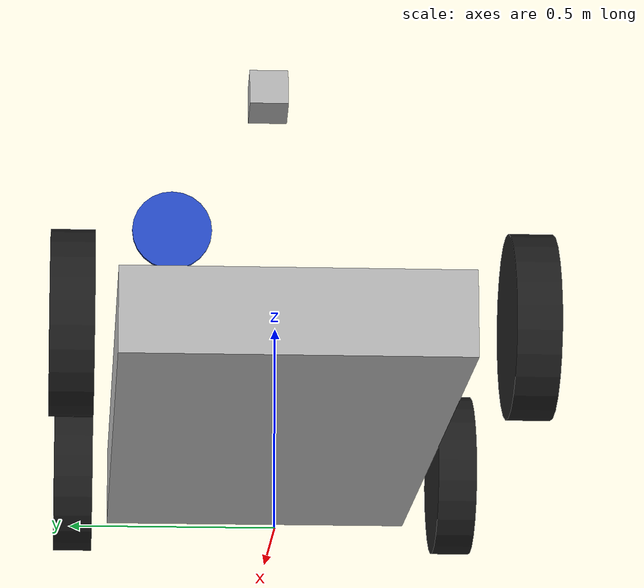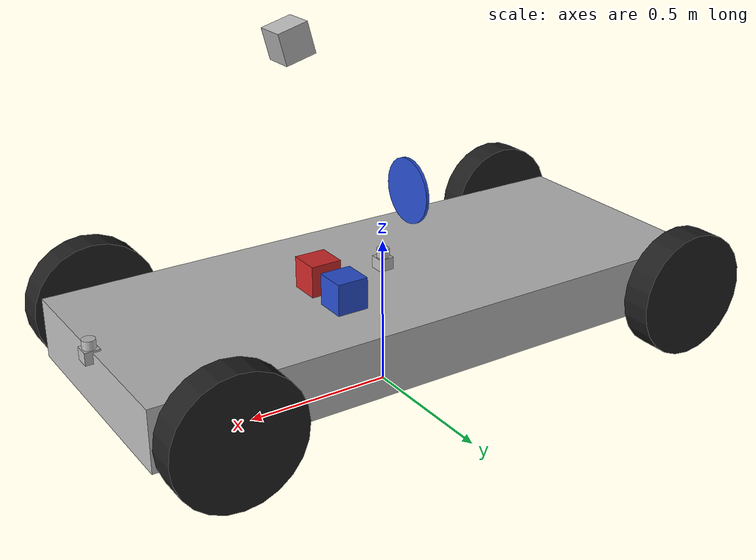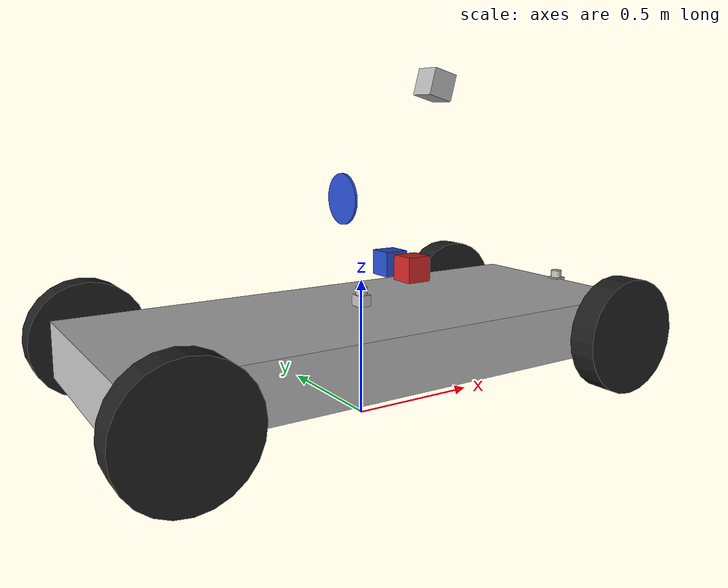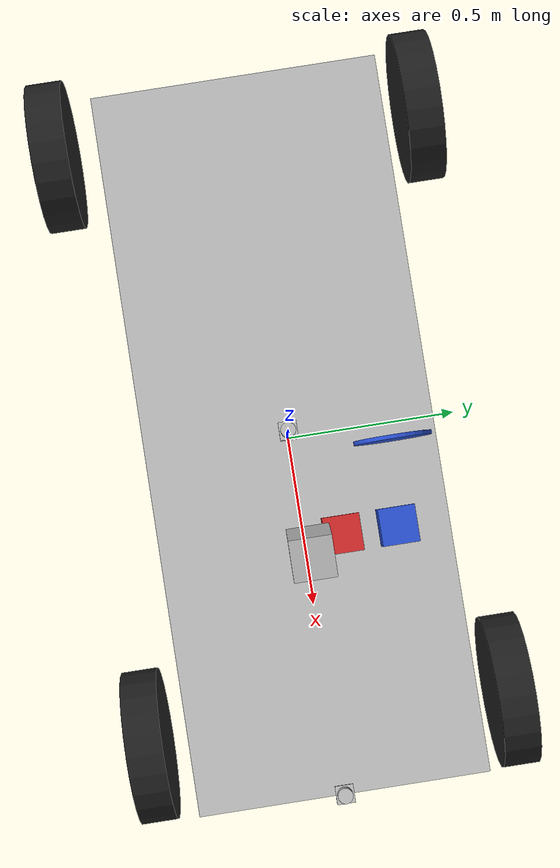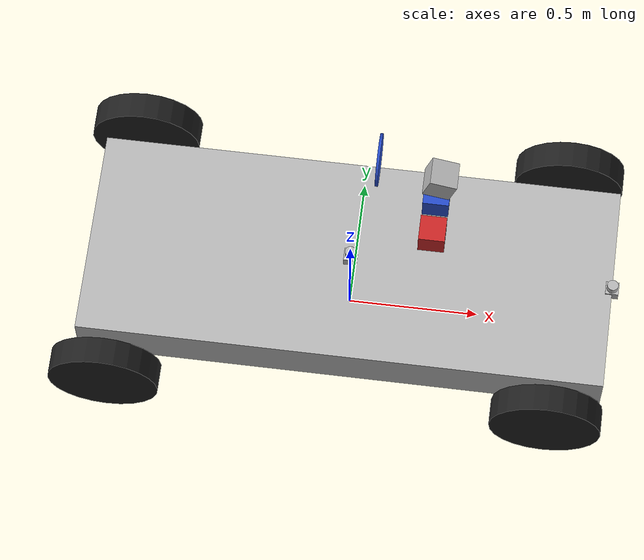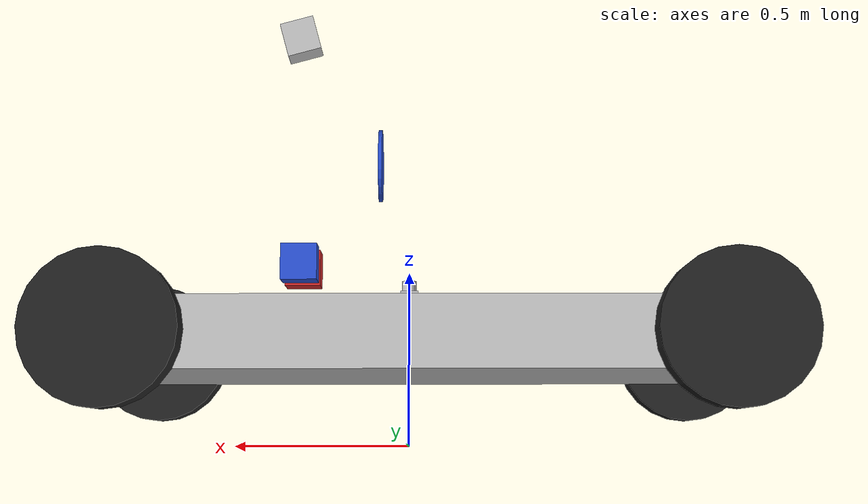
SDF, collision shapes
<?xml version='1.0'?>
<sdf version='1.5'>
  <model name='car-mac-w-camera-minicooper'>
    <link name='chassis'>
      <pose>0 0 0.3 0 -0 0</pose>
      <inertial>
        <mass>100</mass>
        <inertia>
          <ixx>1</ixx>
          <ixy>0</ixy>
          <ixz>0</ixz>
          <iyy>1</iyy>
          <iyz>0</iyz>
          <izz>1</izz>
        </inertia>
        <pose>0 0 0 0 -0 0</pose>
      </inertial>
      <self_collide>0</self_collide>
      <kinematic>0</kinematic>
      <gravity>1</gravity>
      <visual name='visual'>
        <geometry>
          <mesh>
            <uri>/Users/selfcar/Desktop/Self-Driving-Comps/models/minicooper/minicooper-nowheels.stl</uri>
          </mesh>
        </geometry>
        <material>
          <shader type='pixel'>
            <normal_map>__default__</normal_map>
          </shader>
        </material>
        <pose>0.1 0 -0.2 0 -0 1.57079</pose>
        <cast_shadows>1</cast_shadows>
        <transparency>0</transparency>
      </visual>
      <collision name='collision'>
        <laser_retro>0</laser_retro>
        <max_contacts>10</max_contacts>
        <pose>0 0 0 0 -0 0</pose>
        <geometry>
          <box>
            <size>2 0.8 0.2</size>
          </box>
        </geometry>
        <surface>
          <friction>
            <ode>
              <mu>1</mu>
              <mu2>1</mu2>
              <fdir1>0 0 0</fdir1>
              <slip1>0</slip1>
              <slip2>0</slip2>
            </ode>
          </friction>
          <bounce>
            <restitution_coefficient>0</restitution_coefficient>
            <threshold>1e+06</threshold>
          </bounce>
          <contact>
            <collide_without_contact>0</collide_without_contact>
            <collide_without_contact_bitmask>1</collide_without_contact_bitmask>
            <collide_bitmask>1</collide_bitmask>
            <ode>
              <soft_cfm>0</soft_cfm>
              <soft_erp>0.2</soft_erp>
              <kp>1e+13</kp>
              <kd>1</kd>
              <max_vel>0.01</max_vel>
              <min_depth>0</min_depth>
            </ode>
            <bullet>
              <split_impulse>1</split_impulse>
              <split_impulse_penetration_threshold>-0.01</split_impulse_penetration_threshold>
              <soft_cfm>0</soft_cfm>
              <soft_erp>0.2</soft_erp>
              <kp>1e+13</kp>
              <kd>1</kd>
            </bullet>
          </contact>
        </surface>
      </collision>
    </link>
    <link name='back_left_wheel'>
      <pose>-0.860029 0.5017 0.299999 -1.57354 1.57076 -0.002883</pose>
      <inertial>
        <inertia>
          <ixx>1</ixx>
          <ixy>0</ixy>
          <ixz>0</ixz>
          <iyy>1</iyy>
          <iyz>0</iyz>
          <izz>1</izz>
        </inertia>
        <mass>1</mass>
      </inertial>
      <self_collide>0</self_collide>
      <kinematic>0</kinematic>
      <visual name='visual'>
        <geometry>
          <mesh>
            <uri>/Users/selfcar/Desktop/Self-Driving-Comps/models/minicooper/wheel.stl</uri>
          </mesh>
        </geometry>
        <material>
          <script>
            <uri>file://media/materials/scripts/gazebo.material</uri>
            <name>Gazebo/Black</name>
          </script>
          <shader type='pixel'/>
          <ambient>0 0 0 1</ambient>
          <diffuse>0 0 0 1</diffuse>
          <specular>0.1 0.1 0.1 1</specular>
          <emissive>0 0 0 1</emissive>
        </material>
        <pose>0 0 0 0 -0 0</pose>
        <cast_shadows>1</cast_shadows>
        <transparency>0</transparency>
      </visual>
      <collision name='collision'>
        <laser_retro>0</laser_retro>
        <max_contacts>10</max_contacts>
        <pose>0 0 0 0 -0 0</pose>
        <geometry>
          <cylinder>
            <radius>0.21</radius>
            <length>0.1</length>
          </cylinder>
        </geometry>
        <surface>
          <friction>
            <ode>
              <mu>1</mu>
              <mu2>1</mu2>
              <fdir1>0 0 0</fdir1>
              <slip1>0</slip1>
              <slip2>0</slip2>
            </ode>
          </friction>
          <bounce>
            <restitution_coefficient>0</restitution_coefficient>
            <threshold>1e+06</threshold>
          </bounce>
          <contact>
            <collide_without_contact>0</collide_without_contact>
            <collide_without_contact_bitmask>1</collide_without_contact_bitmask>
            <collide_bitmask>1</collide_bitmask>
            <ode>
              <soft_cfm>0</soft_cfm>
              <soft_erp>0.2</soft_erp>
              <kp>1e+13</kp>
              <kd>1</kd>
              <max_vel>0.01</max_vel>
              <min_depth>0</min_depth>
            </ode>
            <bullet>
              <split_impulse>1</split_impulse>
              <split_impulse_penetration_threshold>-0.01</split_impulse_penetration_threshold>
              <soft_cfm>0</soft_cfm>
              <soft_erp>0.2</soft_erp>
              <kp>1e+13</kp>
              <kd>1</kd>
            </bullet>
          </contact>
        </surface>
      </collision>
    </link>
    <link name='back_right_wheel'>
      <pose>-0.873574 -0.526652 0.300006 -0.020474 1.57072 1.55022</pose>
      <inertial>
        <inertia>
          <ixx>1</ixx>
          <ixy>0</ixy>
          <ixz>0</ixz>
          <iyy>1</iyy>
          <iyz>0</iyz>
          <izz>1</izz>
        </inertia>
        <mass>1</mass>
      </inertial>
      <self_collide>0</self_collide>
      <kinematic>0</kinematic>
      <visual name='visual'>
        <geometry>
          <mesh>
            <uri>/Users/selfcar/Desktop/Self-Driving-Comps/models/minicooper/wheel.stl</uri>
          </mesh>
        </geometry>
        <material>
          <script>
            <uri>file://media/materials/scripts/gazebo.material</uri>
            <name>Gazebo/Black</name>
          </script>
          <shader type='pixel'/>
          <ambient>0 0 0 1</ambient>
          <diffuse>0 0 0 1</diffuse>
          <specular>0.1 0.1 0.1 1</specular>
          <emissive>0 0 0 1</emissive>
        </material>
        <pose>0 0 0 0 -0 0</pose>
        <cast_shadows>1</cast_shadows>
        <transparency>0</transparency>
      </visual>
      <collision name='collision'>
        <laser_retro>0</laser_retro>
        <max_contacts>10</max_contacts>
        <pose>0 0 0 0 -0 0</pose>
        <geometry>
          <cylinder>
            <radius>0.21</radius>
            <length>0.1</length>
          </cylinder>
        </geometry>
        <surface>
          <friction>
            <ode>
              <mu>1</mu>
              <mu2>1</mu2>
              <fdir1>0 0 0</fdir1>
              <slip1>0</slip1>
              <slip2>0</slip2>
            </ode>
          </friction>
          <bounce>
            <restitution_coefficient>0</restitution_coefficient>
            <threshold>1e+06</threshold>
          </bounce>
          <contact>
            <collide_without_contact>0</collide_without_contact>
            <collide_without_contact_bitmask>1</collide_without_contact_bitmask>
            <collide_bitmask>1</collide_bitmask>
            <ode>
              <soft_cfm>0</soft_cfm>
              <soft_erp>0.2</soft_erp>
              <kp>1e+13</kp>
              <kd>1</kd>
              <max_vel>0.01</max_vel>
              <min_depth>0</min_depth>
            </ode>
            <bullet>
              <split_impulse>1</split_impulse>
              <split_impulse_penetration_threshold>-0.01</split_impulse_penetration_threshold>
              <soft_cfm>0</soft_cfm>
              <soft_erp>0.2</soft_erp>
              <kp>1e+13</kp>
              <kd>1</kd>
            </bullet>
          </contact>
        </surface>
      </collision>
    </link>
    <link name='brake_pedal'>
      <pose>0.3 0.25 0.5 0 -0 0</pose>
      <inertial>
        <inertia>
          <ixx>1</ixx>
          <ixy>0</ixy>
          <ixz>0</ixz>
          <iyy>1</iyy>
          <iyz>0</iyz>
          <izz>1</izz>
        </inertia>
        <mass>1</mass>
      </inertial>
      <self_collide>0</self_collide>
      <kinematic>0</kinematic>
      <visual name='visual'>
        <geometry>
          <box>
            <size>0.1 0.1 0.1</size>
          </box>
        </geometry>
        <material>
          <script>
            <uri>file://media/materials/scripts/gazebo.material</uri>
            <name>Gazebo/Blue</name>
          </script>
          <shader type='pixel'/>
          <ambient>0 0 1 1</ambient>
          <diffuse>0 0 1 1</diffuse>
          <specular>0.1 0.1 0.1 1</specular>
          <emissive>0 0 0 1</emissive>
        </material>
        <pose>0 0 0 0 -0 0</pose>
        <cast_shadows>1</cast_shadows>
        <transparency>0</transparency>
      </visual>
      <collision name='collision'>
        <laser_retro>0</laser_retro>
        <max_contacts>10</max_contacts>
        <pose>0 0 0 0 -0 0</pose>
        <geometry>
          <box>
            <size>0.1 0.1 0.1</size>
          </box>
        </geometry>
        <surface>
          <friction>
            <ode>
              <mu>1</mu>
              <mu2>1</mu2>
              <fdir1>0 0 0</fdir1>
              <slip1>0</slip1>
              <slip2>0</slip2>
            </ode>
          </friction>
          <bounce>
            <restitution_coefficient>0</restitution_coefficient>
            <threshold>1e+06</threshold>
          </bounce>
          <contact>
            <collide_without_contact>0</collide_without_contact>
            <collide_without_contact_bitmask>1</collide_without_contact_bitmask>
            <collide_bitmask>1</collide_bitmask>
            <ode>
              <soft_cfm>0</soft_cfm>
              <soft_erp>0.2</soft_erp>
              <kp>1e+13</kp>
              <kd>1</kd>
              <max_vel>0.01</max_vel>
              <min_depth>0</min_depth>
            </ode>
            <bullet>
              <split_impulse>1</split_impulse>
              <split_impulse_penetration_threshold>-0.01</split_impulse_penetration_threshold>
              <soft_cfm>0</soft_cfm>
              <soft_erp>0.2</soft_erp>
              <kp>1e+13</kp>
              <kd>1</kd>
            </bullet>
          </contact>
        </surface>
      </collision>
    </link>
    <link name='camera::link'>
      <pose>0.32091 -0 1.2 0 0.262543 0</pose>
      <inertial>
        <mass>0.1</mass>
        <inertia>
          <ixx>0.000166667</ixx>
          <iyy>0.000166667</iyy>
          <izz>0.000166667</izz>
          <ixy>0</ixy>
          <ixz>0</ixz>
          <iyz>0</iyz>
        </inertia>
      </inertial>
      <self_collide>0</self_collide>
      <kinematic>0</kinematic>
      <sensor name='camera' type='camera'>
        <camera name='__default__'>
          <horizontal_fov>1.047</horizontal_fov>
          <image>
            <width>320</width>
            <height>240</height>
          </image>
          <clip>
            <near>0.1</near>
            <far>100</far>
          </clip>
        </camera>
        <always_on>1</always_on>
        <update_rate>30</update_rate>
        <visualize>1</visualize>
      </sensor>
      <visual name='visual'>
        <geometry>
          <box>
            <size>0.1 0.1 0.1</size>
          </box>
        </geometry>
        <material>
          <shader type='pixel'/>
        </material>
        <pose>0 0 0 0 -0 0</pose>
        <cast_shadows>1</cast_shadows>
        <transparency>0</transparency>
      </visual>
      <collision name='collision'>
        <laser_retro>0</laser_retro>
        <max_contacts>10</max_contacts>
        <pose>0 0 0 0 -0 0</pose>
        <geometry>
          <box>
            <size>0.1 0.1 0.1</size>
          </box>
        </geometry>
        <surface>
          <friction>
            <ode>
              <mu>1</mu>
              <mu2>1</mu2>
              <fdir1>0 0 0</fdir1>
              <slip1>0</slip1>
              <slip2>0</slip2>
            </ode>
          </friction>
          <bounce>
            <restitution_coefficient>0</restitution_coefficient>
            <threshold>1e+06</threshold>
          </bounce>
          <contact>
            <collide_without_contact>0</collide_without_contact>
            <collide_without_contact_bitmask>1</collide_without_contact_bitmask>
            <collide_bitmask>1</collide_bitmask>
            <ode>
              <soft_cfm>0</soft_cfm>
              <soft_erp>0.2</soft_erp>
              <kp>1e+13</kp>
              <kd>1</kd>
              <max_vel>0.01</max_vel>
              <min_depth>0</min_depth>
            </ode>
            <bullet>
              <split_impulse>1</split_impulse>
              <split_impulse_penetration_threshold>-0.01</split_impulse_penetration_threshold>
              <soft_cfm>0</soft_cfm>
              <soft_erp>0.2</soft_erp>
              <kp>1e+13</kp>
              <kd>1</kd>
            </bullet>
          </contact>
        </surface>
      </collision>
    </link>

    <link name='car_gps'>
      <pose>0 0 0.441684 0 -0 0</pose>
      <inertial>
        <mass>0.1</mass>
        <inertia>
          <ixx>1</ixx>
          <ixy>0</ixy>
          <ixz>0</ixz>
          <iyy>1</iyy>
          <iyz>0</iyz>
          <izz>1</izz>
        </inertia>
      </inertial>
      <self_collide>0</self_collide>
      <kinematic>0</kinematic>
      <sensor name='gps' type='gps'>
        <pose>0.01 0 0.0175 0 -0 0</pose>
        <plugin name='car_gps' filename='build/libcar_gps.so'/>
        <always_on>1</always_on>
        <update_rate>30</update_rate>
        <visualize>1</visualize>
      </sensor>
      <visual name='visual'>
        <geometry>
          <mesh>
            <uri>model://hokuyo/meshes/hokuyo.dae</uri>
          </mesh>
        </geometry>
        <material>
          <shader type='pixel'/>
        </material>
        <pose>0 0 0 0 -0 0</pose>
        <cast_shadows>1</cast_shadows>
        <transparency>0</transparency>
      </visual>
      <collision name='collision-base'>
        <laser_retro>0</laser_retro>
        <max_contacts>10</max_contacts>
        <pose>0 0 -0.0145 0 -0 0</pose>
        <geometry>
          <box>
            <size>0.05 0.05 0.041</size>
          </box>
        </geometry>
        <surface>
          <friction>
            <ode>
              <mu>1</mu>
              <mu2>1</mu2>
              <fdir1>0 0 0</fdir1>
              <slip1>0</slip1>
              <slip2>0</slip2>
            </ode>
          </friction>
          <bounce>
            <restitution_coefficient>0</restitution_coefficient>
            <threshold>1e+06</threshold>
          </bounce>
          <contact>
            <collide_without_contact>0</collide_without_contact>
            <collide_without_contact_bitmask>1</collide_without_contact_bitmask>
            <collide_bitmask>1</collide_bitmask>
            <ode>
              <soft_cfm>0</soft_cfm>
              <soft_erp>0.2</soft_erp>
              <kp>1e+13</kp>
              <kd>1</kd>
              <max_vel>0.01</max_vel>
              <min_depth>0</min_depth>
            </ode>
            <bullet>
              <split_impulse>1</split_impulse>
              <split_impulse_penetration_threshold>-0.01</split_impulse_penetration_threshold>
              <soft_cfm>0</soft_cfm>
              <soft_erp>0.2</soft_erp>
              <kp>1e+13</kp>
              <kd>1</kd>
            </bullet>
          </contact>
        </surface>
      </collision>
      <collision name='collision-top'>
        <laser_retro>0</laser_retro>
        <max_contacts>10</max_contacts>
        <pose>0 0 0.0205 0 -0 0</pose>
        <geometry>
          <cylinder>
            <radius>0.021</radius>
            <length>0.029</length>
          </cylinder>
        </geometry>
        <surface>
          <friction>
            <ode>
              <mu>1</mu>
              <mu2>1</mu2>
              <fdir1>0 0 0</fdir1>
              <slip1>0</slip1>
              <slip2>0</slip2>
            </ode>
          </friction>
          <bounce>
            <restitution_coefficient>0</restitution_coefficient>
            <threshold>1e+06</threshold>
          </bounce>
          <contact>
            <collide_without_contact>0</collide_without_contact>
            <collide_without_contact_bitmask>1</collide_without_contact_bitmask>
            <collide_bitmask>1</collide_bitmask>
            <ode>
              <soft_cfm>0</soft_cfm>
              <soft_erp>0.2</soft_erp>
              <kp>1e+13</kp>
              <kd>1</kd>
              <max_vel>0.01</max_vel>
              <min_depth>0</min_depth>
            </ode>
            <bullet>
              <split_impulse>1</split_impulse>
              <split_impulse_penetration_threshold>-0.01</split_impulse_penetration_threshold>
              <soft_cfm>0</soft_cfm>
              <soft_erp>0.2</soft_erp>
              <kp>1e+13</kp>
              <kd>1</kd>
            </bullet>
          </contact>
        </surface>
      </collision>
    </link>
    <link name='car_laser'>
      <pose>1 0 0.4 0 -0 0</pose>
      <inertial>
        <mass>0.1</mass>
        <inertia>
          <ixx>1</ixx>
          <ixy>0</ixy>
          <ixz>0</ixz>
          <iyy>1</iyy>
          <iyz>0</iyz>
          <izz>1</izz>
        </inertia>
      </inertial>
      <self_collide>0</self_collide>
      <kinematic>0</kinematic>
      <sensor name='laser' type='ray'>
        <pose>0.01 0 0.0175 0 -0 0</pose>
        <ray>
          <scan>
            <horizontal>
              <samples>640</samples>
              <resolution>1</resolution>
              <min_angle>-1.39626</min_angle>
              <max_angle>1.39626</max_angle>
            </horizontal>
          </scan>
          <range>
            <min>0.08</min>
            <max>10</max>
            <resolution>0.01</resolution>
          </range>
        </ray>
        <plugin name='laser_car' filename='build/liblaser_car.so'/>
        <always_on>1</always_on>
        <update_rate>30</update_rate>
        <visualize>1</visualize>
      </sensor>
      <visual name='visual'>
        <geometry>
          <mesh>
            <uri>model://hokuyo/meshes/hokuyo.dae</uri>
          </mesh>
        </geometry>
        <material>
          <shader type='pixel'/>
        </material>
        <pose>0 0 0 0 -0 0</pose>
        <cast_shadows>1</cast_shadows>
        <transparency>0</transparency>
      </visual>
      <collision name='collision-top'>
        <laser_retro>0</laser_retro>
        <max_contacts>10</max_contacts>
        <pose>0 0 0.0205 0 -0 0</pose>
        <geometry>
          <cylinder>
            <radius>0.021</radius>
            <length>0.029</length>
          </cylinder>
        </geometry>
        <surface>
          <friction>
            <ode>
              <mu>1</mu>
              <mu2>1</mu2>
              <fdir1>0 0 0</fdir1>
              <slip1>0</slip1>
              <slip2>0</slip2>
            </ode>
          </friction>
          <bounce>
            <restitution_coefficient>0</restitution_coefficient>
            <threshold>1e+06</threshold>
          </bounce>
          <contact>
            <collide_without_contact>0</collide_without_contact>
            <collide_without_contact_bitmask>1</collide_without_contact_bitmask>
            <collide_bitmask>1</collide_bitmask>
            <ode>
              <soft_cfm>0</soft_cfm>
              <soft_erp>0.2</soft_erp>
              <kp>1e+13</kp>
              <kd>1</kd>
              <max_vel>0.01</max_vel>
              <min_depth>0</min_depth>
            </ode>
            <bullet>
              <split_impulse>1</split_impulse>
              <split_impulse_penetration_threshold>-0.01</split_impulse_penetration_threshold>
              <soft_cfm>0</soft_cfm>
              <soft_erp>0.2</soft_erp>
              <kp>1e+13</kp>
              <kd>1</kd>
            </bullet>
          </contact>
        </surface>
      </collision>
      <collision name='collision-base'>
        <laser_retro>0</laser_retro>
        <max_contacts>10</max_contacts>
        <pose>0 0 -0.0145 0 -0 0</pose>
        <geometry>
          <box>
            <size>0.05 0.05 0.041</size>
          </box>
        </geometry>
        <surface>
          <friction>
            <ode>
              <mu>1</mu>
              <mu2>1</mu2>
              <fdir1>0 0 0</fdir1>
              <slip1>0</slip1>
              <slip2>0</slip2>
            </ode>
          </friction>
          <bounce>
            <restitution_coefficient>0</restitution_coefficient>
            <threshold>1e+06</threshold>
          </bounce>
          <contact>
            <collide_without_contact>0</collide_without_contact>
            <collide_without_contact_bitmask>1</collide_without_contact_bitmask>
            <collide_bitmask>1</collide_bitmask>
            <ode>
              <soft_cfm>0</soft_cfm>
              <soft_erp>0.2</soft_erp>
              <kp>1e+13</kp>
              <kd>1</kd>
              <max_vel>0.01</max_vel>
              <min_depth>0</min_depth>
            </ode>
            <bullet>
              <split_impulse>1</split_impulse>
              <split_impulse_penetration_threshold>-0.01</split_impulse_penetration_threshold>
              <soft_cfm>0</soft_cfm>
              <soft_erp>0.2</soft_erp>
              <kp>1e+13</kp>
              <kd>1</kd>
            </bullet>
          </contact>
        </surface>
      </collision>
    </link>
    <link name='front_left_wheel'>
      <pose>0.799991 0.493005 0.299993 -0.136351 1.57073 1.43433</pose>
      <inertial>
        <inertia>
          <ixx>1</ixx>
          <ixy>0</ixy>
          <ixz>0</ixz>
          <iyy>1</iyy>
          <iyz>0</iyz>
          <izz>1</izz>
        </inertia>
        <mass>1</mass>
      </inertial>
      <self_collide>0</self_collide>
      <kinematic>0</kinematic>
      <visual name='visual'>
        <geometry>
          <mesh>
            <uri>/Users/selfcar/Desktop/Self-Driving-Comps/models/minicooper/wheel.stl</uri>
          </mesh>
        </geometry>
        <material>
          <script>
            <uri>file://media/materials/scripts/gazebo.material</uri>
            <name>Gazebo/Black</name>
          </script>
          <shader type='pixel'/>
          <ambient>0 0 0 1</ambient>
          <diffuse>0 0 0 1</diffuse>
          <specular>0.1 0.1 0.1 1</specular>
          <emissive>0 0 0 1</emissive>
        </material>
        <pose>0 0 0 0 -0 0</pose>
        <cast_shadows>1</cast_shadows>
        <transparency>0</transparency>
      </visual>
      <collision name='collision'>
        <laser_retro>0</laser_retro>
        <max_contacts>10</max_contacts>
        <pose>0 0 0 0 -0 0</pose>
        <geometry>
          <cylinder>
            <radius>0.21</radius>
            <length>0.1</length>
          </cylinder>
        </geometry>
        <surface>
          <friction>
            <ode>
              <mu>1</mu>
              <mu2>1</mu2>
              <fdir1>0 0 0</fdir1>
              <slip1>0</slip1>
              <slip2>0</slip2>
            </ode>
          </friction>
          <bounce>
            <restitution_coefficient>0</restitution_coefficient>
            <threshold>1e+06</threshold>
          </bounce>
          <contact>
            <collide_without_contact>0</collide_without_contact>
            <collide_without_contact_bitmask>1</collide_without_contact_bitmask>
            <collide_bitmask>1</collide_bitmask>
            <ode>
              <soft_cfm>0</soft_cfm>
              <soft_erp>0.2</soft_erp>
              <kp>1e+13</kp>
              <kd>1</kd>
              <max_vel>0.01</max_vel>
              <min_depth>0</min_depth>
            </ode>
            <bullet>
              <split_impulse>1</split_impulse>
              <split_impulse_penetration_threshold>-0.01</split_impulse_penetration_threshold>
              <soft_cfm>0</soft_cfm>
              <soft_erp>0.2</soft_erp>
              <kp>1e+13</kp>
              <kd>1</kd>
            </bullet>
          </contact>
        </surface>
      </collision>
    </link>
    <link name='front_right_wheel'>
      <pose>0.800007 -0.512307 0.300005 0.431889 1.57073 2.00259</pose>
      <inertial>
        <inertia>
          <ixx>1</ixx>
          <ixy>0</ixy>
          <ixz>0</ixz>
          <iyy>1</iyy>
          <iyz>0</iyz>
          <izz>1</izz>
        </inertia>
        <mass>1</mass>
      </inertial>
      <self_collide>0</self_collide>
      <kinematic>0</kinematic>
      <visual name='visual'>
        <geometry>
          <mesh>
            <uri>/Users/selfcar/Desktop/Self-Driving-Comps/models/minicooper/wheel.stl</uri>
          </mesh>
        </geometry>
        <material>
          <script>
            <uri>file://media/materials/scripts/gazebo.material</uri>
            <name>Gazebo/Black</name>
          </script>
          <shader type='pixel'/>
          <ambient>0 0 0 1</ambient>
          <diffuse>0 0 0 1</diffuse>
          <specular>0.1 0.1 0.1 1</specular>
          <emissive>0 0 0 1</emissive>
        </material>
        <pose>0 0 0 0 -0 0</pose>
        <cast_shadows>1</cast_shadows>
        <transparency>0</transparency>
      </visual>
      <collision name='collision'>
        <laser_retro>0</laser_retro>
        <max_contacts>10</max_contacts>
        <pose>0 0 0 0 -0 0</pose>
        <geometry>
          <cylinder>
            <radius>0.21</radius>
            <length>0.1</length>
          </cylinder>
        </geometry>
        <surface>
          <friction>
            <ode>
              <mu>1</mu>
              <mu2>1</mu2>
              <fdir1>0 0 0</fdir1>
              <slip1>0</slip1>
              <slip2>0</slip2>
            </ode>
          </friction>
          <bounce>
            <restitution_coefficient>0</restitution_coefficient>
            <threshold>1e+06</threshold>
          </bounce>
          <contact>
            <collide_without_contact>0</collide_without_contact>
            <collide_without_contact_bitmask>1</collide_without_contact_bitmask>
            <collide_bitmask>1</collide_bitmask>
            <ode>
              <soft_cfm>0</soft_cfm>
              <soft_erp>0.2</soft_erp>
              <kp>1e+13</kp>
              <kd>1</kd>
              <max_vel>0.01</max_vel>
              <min_depth>0</min_depth>
            </ode>
            <bullet>
              <split_impulse>1</split_impulse>
              <split_impulse_penetration_threshold>-0.01</split_impulse_penetration_threshold>
              <soft_cfm>0</soft_cfm>
              <soft_erp>0.2</soft_erp>
              <kp>1e+13</kp>
              <kd>1</kd>
            </bullet>
          </contact>
        </surface>
      </collision>
    </link>
    <link name='gas_pedal'>
      <pose>0.3 0.1 0.5 0 -0 0</pose>
      <inertial>
        <inertia>
          <ixx>1</ixx>
          <ixy>0</ixy>
          <ixz>0</ixz>
          <iyy>1</iyy>
          <iyz>0</iyz>
          <izz>1</izz>
        </inertia>
        <mass>1</mass>
      </inertial>
      <self_collide>0</self_collide>
      <kinematic>0</kinematic>
      <visual name='visual'>
        <geometry>
          <box>
            <size>0.1 0.1 0.1</size>
          </box>
        </geometry>
        <material>
          <script>
            <uri>file://media/materials/scripts/gazebo.material</uri>
            <name>Gazebo/Red</name>
          </script>
          <shader type='pixel'/>
          <ambient>1 0 0 1</ambient>
          <diffuse>1 0 0 1</diffuse>
          <specular>0.1 0.1 0.1 1</specular>
          <emissive>0 0 0 1</emissive>
        </material>
        <pose>0 0 0 0 -0 0</pose>
        <cast_shadows>1</cast_shadows>
        <transparency>0</transparency>
      </visual>
      <collision name='collision'>
        <laser_retro>0</laser_retro>
        <max_contacts>10</max_contacts>
        <pose>0 0 0 0 -0 0</pose>
        <geometry>
          <box>
            <size>0.1 0.1 0.1</size>
          </box>
        </geometry>
        <surface>
          <friction>
            <ode>
              <mu>1</mu>
              <mu2>1</mu2>
              <fdir1>0 0 0</fdir1>
              <slip1>0</slip1>
              <slip2>0</slip2>
            </ode>
          </friction>
          <bounce>
            <restitution_coefficient>0</restitution_coefficient>
            <threshold>1e+06</threshold>
          </bounce>
          <contact>
            <collide_without_contact>0</collide_without_contact>
            <collide_without_contact_bitmask>1</collide_without_contact_bitmask>
            <collide_bitmask>1</collide_bitmask>
            <ode>
              <soft_cfm>0</soft_cfm>
              <soft_erp>0.2</soft_erp>
              <kp>1e+13</kp>
              <kd>1</kd>
              <max_vel>0.01</max_vel>
              <min_depth>0</min_depth>
            </ode>
            <bullet>
              <split_impulse>1</split_impulse>
              <split_impulse_penetration_threshold>-0.01</split_impulse_penetration_threshold>
              <soft_cfm>0</soft_cfm>
              <soft_erp>0.2</soft_erp>
              <kp>1e+13</kp>
              <kd>1</kd>
            </bullet>
          </contact>
        </surface>
      </collision>
    </link>
    <link name='steering_wheel'>
      <pose>0.075997 0.253852 0.770592 -0.000106 1.5707 -0.000106</pose>
      <inertial>
        <inertia>
          <ixx>1</ixx>
          <ixy>0</ixy>
          <ixz>0</ixz>
          <iyy>1</iyy>
          <iyz>0</iyz>
          <izz>1</izz>
        </inertia>
        <mass>1</mass>
      </inertial>
      <self_collide>0</self_collide>
      <kinematic>0</kinematic>
      <visual name='visual'>
        <geometry>
          <cylinder>
            <radius>0.1</radius>
            <length>0.01</length>
          </cylinder>
        </geometry>
        <material>
          <script>
            <uri>file://media/materials/scripts/gazebo.material</uri>
            <name>Gazebo/Blue</name>
          </script>
          <shader type='pixel'/>
          <ambient>0 0 1 1</ambient>
          <diffuse>0 0 1 1</diffuse>
          <specular>0.1 0.1 0.1 1</specular>
          <emissive>0 0 0 1</emissive>
        </material>
        <pose>0 0 0 0 -0 0</pose>
        <cast_shadows>1</cast_shadows>
        <transparency>0</transparency>
      </visual>
      <collision name='collision'>
        <laser_retro>0</laser_retro>
        <max_contacts>10</max_contacts>
        <pose>0 0 0 0 -0 0</pose>
        <geometry>
          <cylinder>
            <radius>0.1</radius>
            <length>0.01</length>
          </cylinder>
        </geometry>
        <surface>
          <friction>
            <ode>
              <mu>1</mu>
              <mu2>1</mu2>
              <fdir1>0 0 0</fdir1>
              <slip1>0</slip1>
              <slip2>0</slip2>
            </ode>
          </friction>
          <bounce>
            <restitution_coefficient>0</restitution_coefficient>
            <threshold>1e+06</threshold>
          </bounce>
          <contact>
            <collide_without_contact>0</collide_without_contact>
            <collide_without_contact_bitmask>1</collide_without_contact_bitmask>
            <collide_bitmask>1</collide_bitmask>
            <ode>
              <soft_cfm>0</soft_cfm>
              <soft_erp>0.2</soft_erp>
              <kp>1e+13</kp>
              <kd>1</kd>
              <max_vel>0.01</max_vel>
              <min_depth>0</min_depth>
            </ode>
            <bullet>
              <split_impulse>1</split_impulse>
              <split_impulse_penetration_threshold>-0.01</split_impulse_penetration_threshold>
              <soft_cfm>0</soft_cfm>
              <soft_erp>0.2</soft_erp>
              <kp>1e+13</kp>
              <kd>1</kd>
            </bullet>
          </contact>
        </surface>
      </collision>
    </link>
    <joint name='back_left_joint' type='revolute2'>
      <parent>chassis</parent>
      <child>back_left_wheel</child>
      <axis>
        <xyz>0 0 1</xyz>
        <use_parent_model_frame>1</use_parent_model_frame>
        <limit>
          <lower>0</lower>
          <upper>0</upper>
          <effort>-1</effort>
          <velocity>-1</velocity>
        </limit>
        <dynamics>
          <spring_reference>0</spring_reference>
          <spring_stiffness>0</spring_stiffness>
          <damping>0</damping>
          <friction>0</friction>
        </dynamics>
      </axis>
      <axis2>
        <xyz>0 1 0</xyz>
        <use_parent_model_frame>1</use_parent_model_frame>
        <dynamics>
          <spring_reference>0</spring_reference>
          <spring_stiffness>0</spring_stiffness>
          <damping>0</damping>
          <friction>0</friction>
        </dynamics>
        <limit>
          <lower>-1e+16</lower>
          <upper>1e+16</upper>
          <effort>-1</effort>
          <velocity>-1</velocity>
        </limit>
      </axis2>
      <physics>
        <ode>
          <limit>
            <cfm>0</cfm>
            <erp>0.9</erp>
          </limit>
          <suspension>
            <cfm>0</cfm>
            <erp>0.2</erp>
          </suspension>
        </ode>
      </physics>
    </joint>
    <joint name='back_right_joint' type='revolute2'>
      <parent>chassis</parent>
      <child>back_right_wheel</child>
      <axis>
        <xyz>0 0 1</xyz>
        <use_parent_model_frame>1</use_parent_model_frame>
        <limit>
          <lower>0</lower>
          <upper>0</upper>
          <effort>-1</effort>
          <velocity>-1</velocity>
        </limit>
        <dynamics>
          <spring_reference>0</spring_reference>
          <spring_stiffness>0</spring_stiffness>
          <damping>0</damping>
          <friction>0</friction>
        </dynamics>
      </axis>
      <axis2>
        <xyz>0 1 0</xyz>
        <use_parent_model_frame>1</use_parent_model_frame>
        <dynamics>
          <spring_reference>0</spring_reference>
          <spring_stiffness>0</spring_stiffness>
          <damping>0</damping>
          <friction>0</friction>
        </dynamics>
        <limit>
          <lower>-1e+16</lower>
          <upper>1e+16</upper>
          <effort>-1</effort>
          <velocity>-1</velocity>
        </limit>
      </axis2>
      <physics>
        <ode>
          <limit>
            <cfm>0</cfm>
            <erp>0.9</erp>
          </limit>
          <suspension>
            <cfm>0</cfm>
            <erp>0.2</erp>
          </suspension>
        </ode>
      </physics>
    </joint>
    <joint name='brake_joint' type='prismatic'>
      <parent>chassis</parent>
      <child>brake_pedal</child>
      <axis>
        <xyz>1 0 0</xyz>
        <use_parent_model_frame>1</use_parent_model_frame>
        <limit>
          <lower>0</lower>
          <upper>0.2</upper>
          <effort>-1</effort>
          <velocity>-1</velocity>
        </limit>
        <dynamics>
          <spring_reference>0</spring_reference>
          <spring_stiffness>0</spring_stiffness>
          <damping>0</damping>
          <friction>0</friction>
        </dynamics>
      </axis>
      <physics>
        <ode>
          <limit>
            <cfm>0</cfm>
            <erp>0.2</erp>
          </limit>
          <suspension>
            <cfm>0</cfm>
            <erp>0.2</erp>
          </suspension>
        </ode>
      </physics>
    </joint>
    <joint name='camera' type='revolute'>
      <parent>chassis</parent>
      <child>camera::link</child>
      <axis>
        <xyz>0 0 1</xyz>
        <use_parent_model_frame>0</use_parent_model_frame>
        <limit>
          <lower>0</lower>
          <upper>0</upper>
          <effort>-1</effort>
          <velocity>-1</velocity>
        </limit>
        <dynamics>
          <spring_reference>0</spring_reference>
          <spring_stiffness>0</spring_stiffness>
          <damping>0</damping>
          <friction>0</friction>
        </dynamics>
      </axis>
      <physics>
        <ode>
          <limit>
            <cfm>0</cfm>
            <erp>0.2</erp>
          </limit>
          <suspension>
            <cfm>0</cfm>
            <erp>0.2</erp>
          </suspension>
        </ode>
      </physics>
    </joint>
    <joint name='car_gps_joint' type='revolute'>
      <parent>chassis</parent>
      <child>car_gps</child>
      <axis>
        <xyz>0 0 1</xyz>
        <use_parent_model_frame>1</use_parent_model_frame>
        <limit>
          <lower>0</lower>
          <upper>0</upper>
          <effort>-1</effort>
          <velocity>-1</velocity>
        </limit>
        <dynamics>
          <spring_reference>0</spring_reference>
          <spring_stiffness>0</spring_stiffness>
          <damping>0</damping>
          <friction>0</friction>
        </dynamics>
      </axis>
      <physics>
        <ode>
          <limit>
            <cfm>0</cfm>
            <erp>0.2</erp>
          </limit>
          <suspension>
            <cfm>0</cfm>
            <erp>0.2</erp>
          </suspension>
        </ode>
      </physics>
    </joint>
    <joint name='car_laser_joint' type='revolute'>
      <parent>chassis</parent>
      <child>car_laser</child>
      <axis>
        <xyz>0 0 1</xyz>
        <use_parent_model_frame>1</use_parent_model_frame>
        <limit>
          <lower>0</lower>
          <upper>0</upper>
          <effort>-1</effort>
          <velocity>-1</velocity>
        </limit>
        <dynamics>
          <spring_reference>0</spring_reference>
          <spring_stiffness>0</spring_stiffness>
          <damping>0</damping>
          <friction>0</friction>
        </dynamics>
      </axis>
      <physics>
        <ode>
          <limit>
            <cfm>0</cfm>
            <erp>0.2</erp>
          </limit>
          <suspension>
            <cfm>0</cfm>
            <erp>0.2</erp>
          </suspension>
        </ode>
      </physics>
    </joint>
    <joint name='front_left_joint' type='revolute2'>
      <parent>chassis</parent>
      <child>front_left_wheel</child>
      <axis>
        <xyz>0 0 1</xyz>
        <use_parent_model_frame>1</use_parent_model_frame>
        <limit>
          <lower>0</lower>
          <upper>0</upper>
          <effort>-1</effort>
          <velocity>-1</velocity>
        </limit>
        <dynamics>
          <spring_reference>0</spring_reference>
          <spring_stiffness>0</spring_stiffness>
          <damping>0</damping>
          <friction>0</friction>
        </dynamics>
      </axis>
      <axis2>
        <xyz>0 1 0</xyz>
        <use_parent_model_frame>1</use_parent_model_frame>
        <dynamics>
          <spring_reference>0</spring_reference>
          <spring_stiffness>0</spring_stiffness>
          <damping>0</damping>
          <friction>0</friction>
        </dynamics>
        <limit>
          <lower>-1e+16</lower>
          <upper>1e+16</upper>
          <effort>-1</effort>
          <velocity>-1</velocity>
        </limit>
      </axis2>
      <physics>
        <ode>
          <limit>
            <cfm>0</cfm>
            <erp>0.9</erp>
          </limit>
          <suspension>
            <cfm>0</cfm>
            <erp>0.2</erp>
          </suspension>
        </ode>
      </physics>
    </joint>
    <joint name='front_right_joint' type='revolute2'>
      <parent>chassis</parent>
      <child>front_right_wheel</child>
      <axis>
        <xyz>0 0 1</xyz>
        <use_parent_model_frame>1</use_parent_model_frame>
        <limit>
          <lower>0</lower>
          <upper>0</upper>
          <effort>-1</effort>
          <velocity>-1</velocity>
        </limit>
        <dynamics>
          <spring_reference>0</spring_reference>
          <spring_stiffness>0</spring_stiffness>
          <damping>0</damping>
          <friction>0</friction>
        </dynamics>
      </axis>
      <axis2>
        <xyz>0 1 0</xyz>
        <use_parent_model_frame>1</use_parent_model_frame>
        <dynamics>
          <spring_reference>0</spring_reference>
          <spring_stiffness>0</spring_stiffness>
          <damping>0</damping>
          <friction>0</friction>
        </dynamics>
        <limit>
          <lower>-1e+16</lower>
          <upper>1e+16</upper>
          <effort>-1</effort>
          <velocity>-1</velocity>
        </limit>
      </axis2>
      <physics>
        <ode>
          <limit>
            <cfm>0</cfm>
            <erp>0.9</erp>
          </limit>
          <suspension>
            <cfm>0</cfm>
            <erp>0.2</erp>
          </suspension>
        </ode>
      </physics>
    </joint>
    <joint name='gas_joint' type='prismatic'>
      <parent>chassis</parent>
      <child>gas_pedal</child>
      <axis>
        <xyz>1 0 0</xyz>
        <use_parent_model_frame>1</use_parent_model_frame>
        <limit>
          <lower>0</lower>
          <upper>0.2</upper>
          <effort>-1</effort>
          <velocity>-1</velocity>
        </limit>
        <dynamics>
          <spring_reference>0</spring_reference>
          <spring_stiffness>0</spring_stiffness>
          <damping>0</damping>
          <friction>0</friction>
        </dynamics>
      </axis>
      <physics>
        <ode>
          <limit>
            <cfm>0</cfm>
            <erp>0.2</erp>
          </limit>
          <suspension>
            <cfm>0</cfm>
            <erp>0.2</erp>
          </suspension>
        </ode>
      </physics>
    </joint>
    <joint name='steering_joint' type='revolute'>
      <parent>chassis</parent>
      <child>steering_wheel</child>
      <axis>
        <xyz>1 0 0</xyz>
        <use_parent_model_frame>1</use_parent_model_frame>
        <limit>
          <lower>-7.853</lower>
          <upper>7.853</upper>
          <effort>-1</effort>
          <velocity>-1</velocity>
        </limit>
        <dynamics>
          <spring_reference>0</spring_reference>
          <spring_stiffness>0</spring_stiffness>
          <damping>0</damping>
          <friction>0</friction>
        </dynamics>
      </axis>
      <physics>
        <ode>
          <limit>
            <cfm>0</cfm>
            <erp>0.2</erp>
          </limit>
          <suspension>
            <cfm>0</cfm>
            <erp>0.2</erp>
          </suspension>
        </ode>
      </physics>
    </joint>
    <static>0</static>
    <allow_auto_disable>1</allow_auto_disable>
    <!-- PLUGINS FOR THE CAR; ESSENTIALLY THE "BRAINS" OF THE CAR -->
    <plugin filename="build/libsdcCar.so" name="sdcCar">
        <!-- Joints for each wheel -->
        <front_left>front_left_joint</front_left>
        <front_right>front_right_joint</front_right>
        <back_left>back_left_joint</back_left>
        <back_right>back_right_joint</back_right>
        <!-- Joint which controls the gas -->
        <gas>gas_joint</gas>
        <!-- Joint which controls the gas -->
        <brake>brake_joint</brake>
        <!-- Joint which controls the steering -->
        <steering>steering_joint</steering>
        <!-- Power is multiplied by "gas" to determine force applied to wheels -->
        <front_power>10</front_power>
        <rear_power>10</rear_power>
        <!-- The angle range the front tires can turn for steering, in radians -->
        <tire_angle_range>0.5</tire_angle_range>
        <!-- Maximum speed for the car in meters/second -->
        <max_speed>10</max_speed>
        <!-- Factor for the down-force applied as the car travels faster -->
        <!-- A larger number increases the down force -->
        <aero_load>1.0</aero_load>
    </plugin>
  </model>
</sdf>
